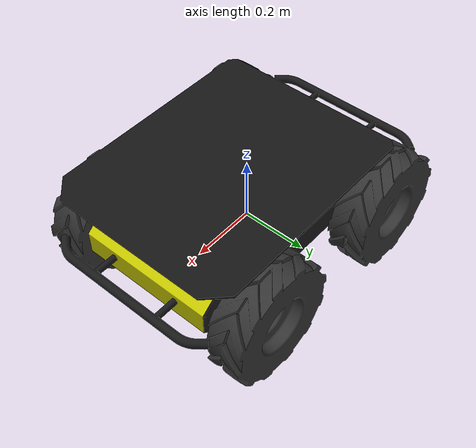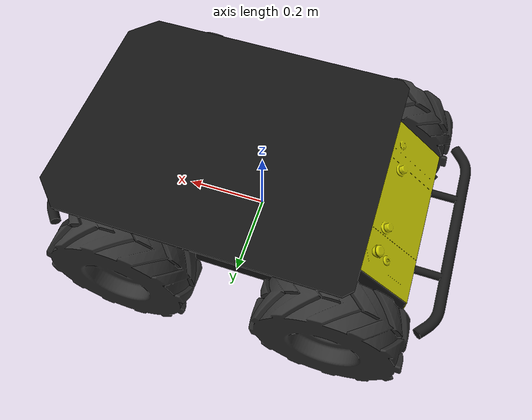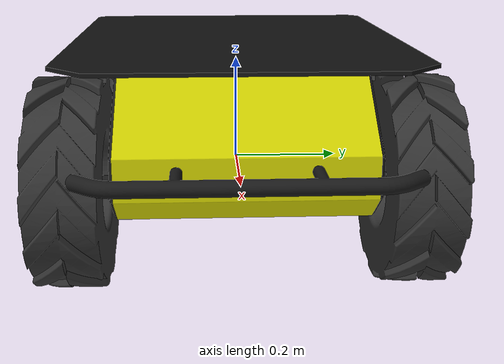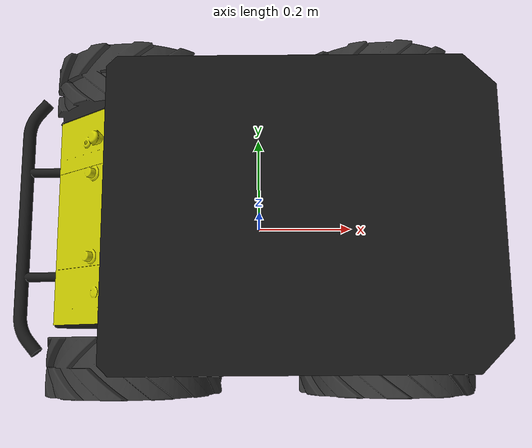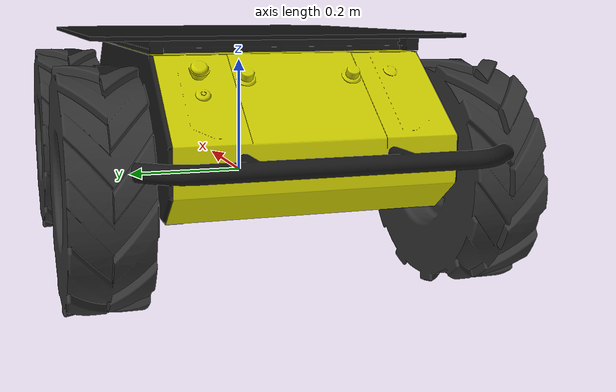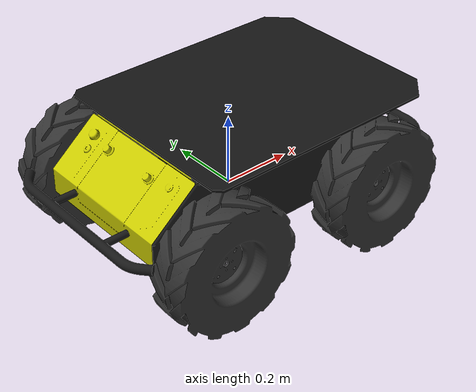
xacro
<?xml version="1.0"?>

<robot xmlns:xacro="http://ros.org/wiki/xacro" name="$(arg name)">
  <!-- robot name parameter -->
  <xacro:arg name="name" default="" />

  <xacro:arg name="prefix" default="" />
  <xacro:arg name="gazebo_controllers" default="$(find husky_control)/config/control.yaml" />
   <xacro:arg name="serial_port" default="/dev/ttyUSB0" />

  <xacro:property name="mesh_path" value="package://husky_description/meshes" />

  <xacro:include filename="$(find husky_description)/urdf/husky_macro.urdf.xacro" />

  <!-- Load husky description -->
  <xacro:husky prefix="$(arg prefix)" />

  <xacro:if value="$(arg is_sim)">

    <gazebo>
      <plugin name="$(arg prefix)gazebo_ros2_control" filename="libgazebo_ros2_control.so">
        <parameters>$(arg gazebo_controllers)</parameters>
      </plugin>
    </gazebo>

    <gazebo>
      <plugin name="$(arg prefix)imu_controller" filename="libhector_gazebo_ros_imu.so">
        <robotNamespace>$(arg robot_namespace)</robotNamespace>
        <updateRate>50.0</updateRate>
        <bodyName>$(arg prefix)base_link</bodyName>
        <topicName>$(arg prefix)imu/data</topicName>
        <accelDrift>0.005 0.005 0.005</accelDrift>
        <accelGaussianNoise>0.005 0.005 0.005</accelGaussianNoise>
        <rateDrift>0.005 0.005 0.005 </rateDrift>
        <rateGaussianNoise>0.005 0.005 0.005 </rateGaussianNoise>
        <headingDrift>0.005</headingDrift>
        <headingGaussianNoise>0.005</headingGaussianNoise>
      </plugin>
    </gazebo>

    <gazebo>
      <plugin name="$(arg prefix)gps_controller" filename="libhector_gazebo_ros_gps.so">
        <robotNamespace>$(arg robot_namespace)</robotNamespace>
        <updateRate>40</updateRate>
        <bodyName>$(arg prefix)base_link</bodyName>
        <frameId>$(arg prefix)base_link</frameId>
        <topicName>navsat/fix</topicName>
        <velocityTopicName>$(arg prefix)navsat/vel</velocityTopicName>
        <referenceLatitude>49.9</referenceLatitude>
        <referenceLongitude>8.9</referenceLongitude>
        <referenceHeading>0</referenceHeading>
        <referenceAltitude>0</referenceAltitude>
        <drift>0.0001 0.0001 0.0001</drift>
      </plugin>
    </gazebo>

  </xacro:if>

  <!-- Optional custom includes. -->
  <xacro:include filename="$(arg urdf_extras)" />

</robot>

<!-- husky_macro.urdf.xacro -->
<robot xmlns:xacro="http://ros.org/wiki/xacro">

  <xacro:arg name="laser_enabled" default="false" />
  <xacro:arg name="laser_xyz" default="$(optenv HUSKY_LMS1XX_XYZ 0.2206 0.0 0.00635)" />
  <xacro:arg name="laser_rpy" default="$(optenv HUSKY_LMS1XX_RPY 0.0 0.0 0.0)" />

  <xacro:arg name="realsense_enabled" default="false" />
  <xacro:arg name="realsense_xyz" default="$(optenv HUSKY_REALSENSE_XYZ 0 0 0)" />
  <xacro:arg name="realsense_rpy" default="$(optenv HUSKY_REALSENSE_RPY 0 0 0)" />
  <xacro:arg name="realsense_mount" default="$(optenv HUSKY_REALSENSE_MOUNT_FRAME sensor_arch_mount_link)" />

  <xacro:property name="husky_front_bumper_extend" value="$(optenv HUSKY_FRONT_BUMPER_EXTEND 0)" />
  <xacro:property name="husky_rear_bumper_extend" value="$(optenv HUSKY_REAR_BUMPER_EXTEND 0)" />

  <xacro:arg name="robot_namespace" default="/" />
  <xacro:arg name="is_sim" default="false" />
  <xacro:arg name="urdf_extras" default="empty.urdf" />

  <xacro:if value="$(arg is_sim)">
    <xacro:property name="mesh_path" value="file://$(find husky_description)/meshes" />
  </xacro:if>

  <!-- Included URDF/XACRO Files -->
  <xacro:include filename="$(find husky_description)/urdf/decorations.urdf.xacro" />
  <xacro:include filename="$(find husky_description)/urdf/wheel.urdf.xacro" />

  <xacro:property name="M_PI" value="3.14159"/>

  <xacro:macro name="husky" params="prefix">

    <!-- Base Size -->
    <xacro:property name="base_x_size" value="0.98740000" />
    <xacro:property name="base_y_size" value="0.57090000" />
    <xacro:property name="base_z_size" value="0.24750000" />

    <!-- Wheel Mounting Positions -->
    <xacro:property name="wheelbase" value="0.5120" />
    <xacro:property name="track" value="0.5708" />
    <xacro:property name="wheel_vertical_offset" value="0.03282" />

    <!-- Wheel Properties -->
    <xacro:property name="wheel_length" value="0.1143" />
    <xacro:property name="wheel_radius" value="0.1651" />

    <!-- Base link is the center of the robot's bottom plate -->
    <link name="${prefix}base_link">
      <visual>
        <origin xyz="0 0 0" rpy="0 0 0" />
        <geometry>
          <mesh filename="${mesh_path}/base_link.dae" />
        </geometry>
      </visual>
      <collision>
        <origin xyz="${( husky_front_bumper_extend - husky_rear_bumper_extend ) / 2.0} 0 ${base_z_size/4}" rpy="0 0 0" />
        <geometry>
          <box size="${ base_x_size + husky_front_bumper_extend + husky_rear_bumper_extend } ${base_y_size} ${base_z_size/2}"/>
        </geometry>
      </collision>
      <collision>
        <origin xyz="0 0 ${base_z_size*3/4-0.01}" rpy="0 0 0" />
        <geometry>
          <box size="${base_x_size*4/5} ${base_y_size} ${base_z_size/2-0.02}"/>
        </geometry>
      </collision>
    </link>

    <!-- Base footprint is on the ground under the robot -->
    <link name="${prefix}base_footprint"/>

    <joint name="${prefix}base_footprint_joint" type="fixed">
      <origin xyz="0 0 ${wheel_vertical_offset - wheel_radius}" rpy="0 0 0" />
      <parent link="${prefix}base_link" />
      <child link="${prefix}base_footprint" />
    </joint>

    <!-- Inertial link stores the robot's inertial information -->
    <link name="${prefix}inertial_link">
      <inertial>
        <mass value="46.034" />
        <origin xyz="-0.00065 -0.085 0.062" />
        <inertia ixx="0.6022" ixy="-0.02364" ixz="-0.1197" iyy="1.7386" iyz="-0.001544" izz="2.0296" />
      </inertial>
    </link>

    <joint name="${prefix}inertial_joint" type="fixed">
      <origin xyz="0 0 0" rpy="0 0 0" />
      <parent link="${prefix}base_link" />
      <child link="${prefix}inertial_link" />
    </joint>

    <!-- IMU Link is the standard mounting position for the UM6 IMU.-->
    <!-- Can be modified with environment variables in /etc/ros/setup.bash -->
    <link name="${prefix}imu_link"/>
    <joint name="${prefix}imu_joint" type="fixed">
      <origin xyz="$(optenv HUSKY_IMU_XYZ 0.19 0 0.149)" rpy="$(optenv HUSKY_IMU_RPY 0 -1.5708 3.1416)" />
      <parent link="${prefix}base_link" />
      <child link="${prefix}imu_link" />
    </joint>
    <gazebo reference="${prefix}imu_link">
    </gazebo>

    <!-- Husky wheel macros -->
    <xacro:husky_wheel wheel_prefix="${prefix}front_left">
      <origin xyz="${wheelbase/2} ${track/2} ${wheel_vertical_offset}" rpy="0 0 0" />
    </xacro:husky_wheel>
    <xacro:husky_wheel wheel_prefix="${prefix}front_right">
      <origin xyz="${wheelbase/2} ${-track/2} ${wheel_vertical_offset}" rpy="0 0 0" />
    </xacro:husky_wheel>
    <xacro:husky_wheel wheel_prefix="${prefix}rear_left">
      <origin xyz="${-wheelbase/2} ${track/2} ${wheel_vertical_offset}" rpy="0 0 0" />
    </xacro:husky_wheel>
    <xacro:husky_wheel wheel_prefix="${prefix}rear_right">
      <origin xyz="${-wheelbase/2} ${-track/2} ${wheel_vertical_offset}" rpy="0 0 0" />
    </xacro:husky_wheel>

    <xacro:husky_decorate />

    <!-- add the intel realsense to the topbar if needed -->

    <ros2_control name="${prefix}husky_hardware" type="system">
      <hardware>
        <xacro:if value="$(arg is_sim)">
          <plugin>gazebo_ros2_control/GazeboSystem</plugin>
        </xacro:if>
        <xacro:unless value="$(arg is_sim)">
          <plugin>husky_base/HuskyHardware</plugin>
          <plugin>fake_components/GenericSystem</plugin>
          <param name="hw_start_duration_sec">2.0</param>
          <param name="hw_stop_duration_sec">3.0</param>
          <param name="wheel_diameter">0.3302</param>
          <param name="max_accel">5.0</param>
          <param name="max_speed">1.0</param>
          <param name="polling_timeout">10.0</param>
          <param name="serial_port">$(arg serial_port)</param>
        </xacro:unless>
      </hardware>
      <joint name="${prefix}front_left_wheel_joint">
        <command_interface name="velocity">
          <param name="min">-1</param>
          <param name="max">1</param>
        </command_interface>
        <state_interface name="position"/>
        <state_interface name="velocity"/>
      </joint>
      <joint name="${prefix}rear_left_wheel_joint">
        <command_interface name="velocity">
          <param name="min">-1</param>
          <param name="max">1</param>
        </command_interface>
        <state_interface name="position"/>
        <state_interface name="velocity"/>
      </joint>
      <joint name="${prefix}front_right_wheel_joint">
        <command_interface name="velocity">
          <param name="min">-1</param>
          <param name="max">1</param>
        </command_interface>
        <state_interface name="position"/>
        <state_interface name="velocity"/>
      </joint>
      <joint name="${prefix}rear_right_wheel_joint">
        <command_interface name="velocity">
          <param name="min">-1</param>
          <param name="max">1</param>
        </command_interface>
        <state_interface name="position"/>
        <state_interface name="velocity"/>
      </joint>
    </ros2_control>

  </xacro:macro>

</robot>

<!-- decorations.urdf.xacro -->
<robot name="husky_decorations" xmlns:xacro="http://ros.org/wiki/xacro">

  <material name="dark_grey"><color rgba="0.2 0.2 0.2 1.0" /></material>
  <material name="medium_grey"><color rgba="0.6 0.6 0.6 1.0" /></material>
  <material name="light_grey"><color rgba="0.8 0.8 0.8 1.0" /></material>
  <material name="yellow"><color rgba="0.8 0.8 0.0 1.0" /></material>
  <material name="black"><color rgba="0.15 0.15 0.15 1.0" /></material>
  <material name="white"><color rgba="1.0 1.0 1.0 1.0" /></material>
  <material name="red"><color rgba="1.0 0.0 0.0 1.0" /></material>

  <xacro:macro name="husky_decorate">

    <xacro:property name="husky_front_bumper_extend" value="$(optenv HUSKY_FRONT_BUMPER_EXTEND 0)" />
    <xacro:property name="husky_rear_bumper_extend" value="$(optenv HUSKY_REAR_BUMPER_EXTEND 0)" />

    <!-- Spawn Husky chassis -->
    <link name="top_chassis_link">
      <visual>
        <origin xyz="0 0 0" rpy="0 0 0" />
        <geometry>
          <mesh filename="${mesh_path}/top_chassis.dae" />
        </geometry>
      </visual>
    </link>

    <!-- Attach chassis to the robot -->
    <joint name="top_chassis_joint" type="fixed">
      <parent link="base_link" />
      <child link="top_chassis_link" />
    </joint>

    <xacro:if value="$(optenv HUSKY_USER_RAIL_ENABLED true)">
      <!-- Spawn user rails -->
      <link name="user_rail_link">
        <visual>
          <geometry>
            <mesh filename="${mesh_path}/user_rail.dae" />
          </geometry>
        </visual>
      </link>

      <!-- Attach user rails to base link -->
      <joint name="user_rail" type="fixed">
        <origin xyz="0.272 0 0.245" rpy="0 0 0" />
        <parent link="base_link" />
        <child link="user_rail_link" />
      </joint>
    </xacro:if>

    <!-- Spawn front bumper link -->
    <link name="front_bumper_link">
      <visual>
        <geometry>
          <mesh filename="${mesh_path}/bumper.dae" />
        </geometry>
      </visual>
    </link>

    <!-- Attach front bumper -->
    <joint name="front_bumper" type="fixed">
      <origin xyz="${0.48 + husky_front_bumper_extend} 0 0.091" rpy="0 0 0" />
      <parent link="base_link" />
      <child link="front_bumper_link" />
    </joint>

    <xacro:if value="${husky_front_bumper_extend}">
      <link name="front_bumper_extension_link">
          <visual>
              <geometry>
                  <mesh filename="${mesh_path}/bumper_extension.dae" />
              </geometry>
          </visual>
      </link>

      <joint name="front_bumper_extension" type="fixed">
        <origin xyz="${0.48 + husky_front_bumper_extend} 0 0.091" rpy="0 0 0" />
        <parent link="base_link" />
        <child link="front_bumper_extension_link" />
      </joint>
    </xacro:if>

    <!-- Spawn rear bumper link -->
    <link name="rear_bumper_link">
      <visual>
        <geometry>
          <mesh filename="${mesh_path}/bumper.dae" />
        </geometry>
      </visual>
    </link>

    <!-- Attach rear bumper -->
    <joint name="rear_bumper" type="fixed">
      <origin xyz="${-0.48 - husky_rear_bumper_extend} 0 0.091" rpy="0 0 ${M_PI}" />
      <parent link="base_link" />
      <child link="rear_bumper_link" />
    </joint>

    <xacro:if value="${husky_rear_bumper_extend}">
      <link name="rear_bumper_extension_link">
          <visual>
              <geometry>
                  <mesh filename="${mesh_path}/bumper_extension.dae" />
              </geometry>
          </visual>
      </link>

      <joint name="rear_bumper_extension" type="fixed">
        <origin xyz="${-0.48 - husky_rear_bumper_extend} 0 0.091" rpy="0 0 ${M_PI}" />
        <parent link="base_link" />
        <child link="rear_bumper_extension_link" />
      </joint>
    </xacro:if>

    <xacro:if value="$(optenv HUSKY_TOP_PLATE_ENABLED true)">
      <!-- Spawn the top plate -->
      <xacro:if value="$(optenv HUSKY_LARGE_TOP_PLATE false)">
        <link name="top_plate_link">
          <visual>
            <origin xyz="0 0 0" rpy="0 0 0" />
            <geometry>
              <mesh filename="${mesh_path}/large_top_plate.dae" />
            </geometry>
          </visual>
          <collision>
            <origin xyz="0 0 0" rpy="0 0 0"/>
            <geometry>
              <mesh filename="${mesh_path}/large_top_plate_collision.stl" />
            </geometry>
          </collision>
        </link>
        <!-- Attach top plate -->
        <joint name="top_plate_joint" type="fixed">
          <parent link="base_link" />
          <child link="top_plate_link"/>
          <origin xyz="0.0812 0 0.225" rpy="0 0 0"/>
        </joint>
        <!-- Top plate front link -->
        <joint name="top_plate_front_joint" type="fixed">
          <parent link="top_plate_link" />
          <child link="top_plate_front_link"/>
          <origin xyz="0.4125 0 0.00672" rpy="0 0 0"/>
        </joint>
        <!-- Top plate rear link-->
        <joint name="top_plate_rear_joint" type="fixed">
          <parent link="top_plate_link" />
          <child link="top_plate_rear_link"/>
          <origin xyz="-0.4125 0 0.00672" rpy="0 0 0"/>
        </joint>
      </xacro:if>

      <xacro:unless value="$(optenv HUSKY_LARGE_TOP_PLATE false)">
        <link name="top_plate_link">
          <visual>
            <origin xyz="0 0 0" rpy="0 0 0" />
            <geometry>
              <mesh filename="${mesh_path}/top_plate.dae" />
            </geometry>
          </visual>
          <collision>
            <origin xyz="0 0 0" rpy="0 0 0"/>
            <geometry>
              <mesh filename="${mesh_path}/top_plate.stl" />
            </geometry>
          </collision>
        </link>
        <!-- Attach top plate -->
        <joint name="top_plate_joint" type="fixed">
          <parent link="base_link" />
          <child link="top_plate_link"/>
          <origin xyz="0.0812 0 0.245" rpy="0 0 0"/>
        </joint>
        <!-- Top plate front link -->
        <joint name="top_plate_front_joint" type="fixed">
          <parent link="top_plate_link" />
          <child link="top_plate_front_link"/>
          <origin xyz="0.36367 0 0.00639" rpy="0 0 0"/>
        </joint>
        <!-- Top plate rear link-->
        <joint name="top_plate_rear_joint" type="fixed">
          <parent link="top_plate_link" />
          <child link="top_plate_rear_link"/>
          <origin xyz="-0.36633 0 0.00639" rpy="0 0 0"/>
        </joint>
      </xacro:unless>
      <link name="top_plate_front_link"/>
      <link name="top_plate_rear_link"/>
    </xacro:if>

  </xacro:macro>

</robot>

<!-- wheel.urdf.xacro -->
<robot xmlns:xacro="http://ros.org/wiki/xacro" name="husky_wheel">

  <xacro:macro name="husky_wheel" params="wheel_prefix *joint_pose">
    <link name="${wheel_prefix}_wheel">
      <inertial>
        <mass value="2.637" />
        <origin xyz="0 0 0" />
        <inertia  ixx="0.02467" ixy="0" ixz="0" iyy="0.04411" iyz="0" izz="0.02467" />
      </inertial>
      <visual>
        <origin xyz="0 0 0" rpy="0 0 0" />
        <geometry>
          <mesh filename="${mesh_path}/wheel.dae" />
        </geometry>
      </visual>
      <collision>
        <origin xyz="0 0 0" rpy="${M_PI/2} 0 0" />
        <geometry>
          <cylinder length="${wheel_length}" radius="${wheel_radius}" />
        </geometry>
      </collision>
    </link>

    <gazebo reference="${wheel_prefix}_wheel">
      <mu1 value="1.0"/>
      <mu2 value="0.5"/>
      <kp value="10000000.0" />
      <kd value="1.0" />
      <fdir1 value="1 0 0"/>
    </gazebo>

    <joint name="${wheel_prefix}_wheel_joint" type="continuous">
      <parent link="base_link"/>
      <child link="${wheel_prefix}_wheel"/>
      <xacro:insert_block name="joint_pose"/>
      <axis xyz="0 1 0" rpy="0 0 0" />
    </joint>

  </xacro:macro>
</robot>
